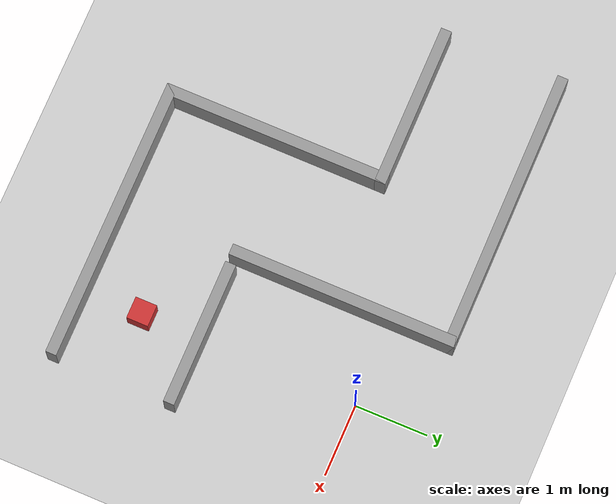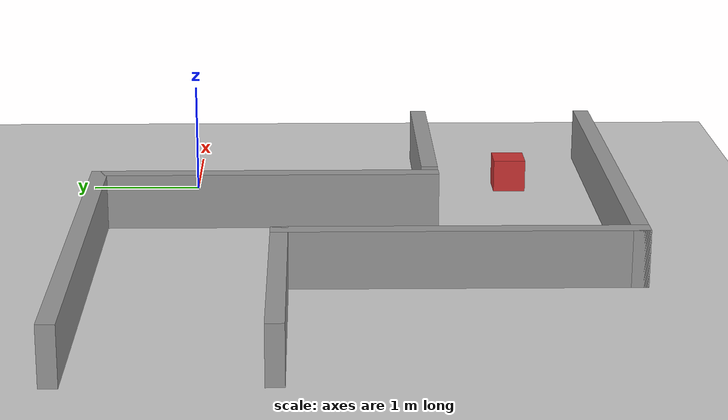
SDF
<?xml version="1.0" ?>
<sdf version="1.5">
  <world name="corridor_world">
    <physics type="ode">
      <real_time_update_rate>1000.0</real_time_update_rate>
      <max_step_size>0.001</max_step_size>
      <real_time_factor>1</real_time_factor>
      <ode>
        <solver>
          <type>quick</type>
          <iters>150</iters>
          <precon_iters>0</precon_iters>
          <sor>1.400000</sor>
          <use_dynamic_moi_rescaling>1</use_dynamic_moi_rescaling>
        </solver>
      </ode>
    </physics>

    <scene>
      <ambient>0.4 0.4 0.4 1</ambient>
      <background>0.7 0.7 0.7 1</background>
      <shadows>true</shadows>
    </scene>

    <light name="sun" type="directional">
      <cast_shadows>true</cast_shadows>
      <pose>0 0 10 0 -0 0</pose>
      <diffuse>0.8 0.8 0.8 1</diffuse>
      <specular>0.2 0.2 0.2 1</specular>
      <attenuation>
        <range>1000</range>
        <constant>0.9</constant>
        <linear>0.01</linear>
        <quadratic>0.001</quadratic>
      </attenuation>
      <direction>-0.5 0.1 -0.9</direction>
    </light>

    <!-- 地面 -->
    <model name="ground_plane">
      <static>true</static>
      <link name="link">
        <collision name="collision">
          <geometry>
            <plane>
              <normal>0 0 1</normal>
              <size>100 100</size>
            </plane>
          </geometry>
          <surface>
            <friction>
              <ode>
                <mu>100</mu>
                <mu2>50</mu2>
              </ode>
            </friction>
          </surface>
        </collision>
        <visual name="visual">
          <geometry>
            <plane>
              <normal>0 0 1</normal>
              <size>100 100</size>
            </plane>
          </geometry>
          <material>
            <script>
              <uri>file://media/materials/scripts/gazebo.material</uri>
              <name>Gazebo/Grey</name>
            </script>
          </material>
        </visual>
      </link>
    </model>

    <!-- Z 形走廊墙体（6 面墙） -->
    <!-- 段1（水平，y=0，x∈[-5,-2]） -->
    <model name="seg1_bottom_wall">
      <static>true</static>
      <!-- 东端从 x=-2 缩到 x=-2.75（与段2西墙东侧齐平）：去掉伸进走廊2的延伸 -->
      <pose>-3.875 -0.825 0.25 0 0 0</pose>
      <link name="link">
        <collision name="collision">
          <geometry><box><size>2.25 0.15 0.5</size></box></geometry>
        </collision>
        <visual name="visual">
          <geometry><box><size>2.25 0.15 0.5</size></box></geometry>
          <material>
            <ambient>0.6 0.6 0.6 1</ambient>
            <diffuse>0.6 0.6 0.6 1</diffuse>
          </material>
        </visual>
      </link>
    </model>

    <model name="seg1_top_wall">
      <static>true</static>
      <!-- 东端从 x=-2 延到 x=-1.1（与段2东墙连接），封闭拐角1东北外角 -->
      <pose>-3.05 0.825 0.25 0 0 0</pose>
      <link name="link">
        <collision name="collision">
          <geometry><box><size>3.9 0.15 0.5</size></box></geometry>
        </collision>
        <visual name="visual">
          <geometry><box><size>3.9 0.15 0.5</size></box></geometry>
          <material>
            <ambient>0.6 0.6 0.6 1</ambient>
            <diffuse>0.6 0.6 0.6 1</diffuse>
          </material>
        </visual>
      </link>
    </model>

    <!-- 段2（垂直，x=-2，y∈[-3,0]） -->
    <!-- 西侧墙顶部缩到 y=-0.75（与段1南墙齐平）、底部延到 y=-3.9（与段3南墙连接，封闭拐角2西南外角） -->
    <model name="seg2_left_wall">
      <static>true</static>
      <pose>-2.825 -2.325 0.25 0 0 0</pose>
      <link name="link">
        <collision name="collision">
          <geometry><box><size>0.15 3.15 0.5</size></box></geometry>
        </collision>
        <visual name="visual">
          <geometry><box><size>0.15 3.15 0.5</size></box></geometry>
          <material>
            <ambient>0.6 0.6 0.6 1</ambient>
            <diffuse>0.6 0.6 0.6 1</diffuse>
          </material>
        </visual>
      </link>
    </model>

    <model name="seg2_right_wall">
      <static>true</static>
      <!-- 段2东侧墙（x∈[-1.25,-1.1]，y∈[-2.25,0.9]）：底部缩到 y=-2.25 让出走廊3入口，顶部延到 y=0.9 与段1北墙连接（封闭拐角1东北外角） -->
      <pose>-1.175 -0.675 0.25 0 0 0</pose>
      <link name="link">
        <collision name="collision">
          <geometry><box><size>0.15 3.15 0.5</size></box></geometry>
        </collision>
        <visual name="visual">
          <geometry><box><size>0.15 3.15 0.5</size></box></geometry>
          <material>
            <ambient>0.6 0.6 0.6 1</ambient>
            <diffuse>0.6 0.6 0.6 1</diffuse>
          </material>
        </visual>
      </link>
    </model>

    <!-- 段3（水平，y=-3，x∈[-2,1]） -->
    <model name="seg3_bottom_wall">
      <static>true</static>
      <!-- 西端从 x=-2 延到 x=-2.9（与段2西墙连接），封闭拐角2西南外角 -->
      <pose>-0.95 -3.825 0.25 0 0 0</pose>
      <link name="link">
        <collision name="collision">
          <geometry><box><size>3.9 0.15 0.5</size></box></geometry>
        </collision>
        <visual name="visual">
          <geometry><box><size>3.9 0.15 0.5</size></box></geometry>
          <material>
            <ambient>0.6 0.6 0.6 1</ambient>
            <diffuse>0.6 0.6 0.6 1</diffuse>
          </material>
        </visual>
      </link>
    </model>

    <model name="seg3_top_wall">
      <static>true</static>
      <pose>0.0 -2.175 0.25 0 0 0</pose>
      <link name="link">
        <collision name="collision">
          <geometry><box><size>2.0 0.15 0.5</size></box></geometry>
        </collision>
        <visual name="visual">
          <geometry><box><size>2.0 0.15 0.5</size></box></geometry>
          <material>
            <ambient>0.6 0.6 0.6 1</ambient>
            <diffuse>0.6 0.6 0.6 1</diffuse>
          </material>
        </visual>
      </link>
    </model>

    <!-- 可移动障碍物（盒子） -->
    <!-- 初始位置：段3中间 (0, -3) -->
    <model name="obstacle_box">
      <pose>0.0 -3.0 0.15 0 0 0</pose>
      <link name="link">
        <inertial>
          <mass>1.0</mass>
          <inertia>
            <ixx>0.001</ixx>
            <ixy>0</ixy>
            <ixz>0</ixz>
            <iyy>0.001</iyy>
            <iyz>0</iyz>
            <izz>0.001</izz>
          </inertia>
        </inertial>
        <collision name="collision">
          <geometry>
            <box>
              <size>0.3 0.3 0.3</size>
            </box>
          </geometry>
        </collision>
        <visual name="visual">
          <geometry>
            <box>
              <size>0.3 0.3 0.3</size>
            </box>
          </geometry>
          <material>
            <ambient>0.8 0.2 0.2 1</ambient>
            <diffuse>0.8 0.2 0.2 1</diffuse>
          </material>
        </visual>
      </link>
    </model>

  </world>
</sdf>
